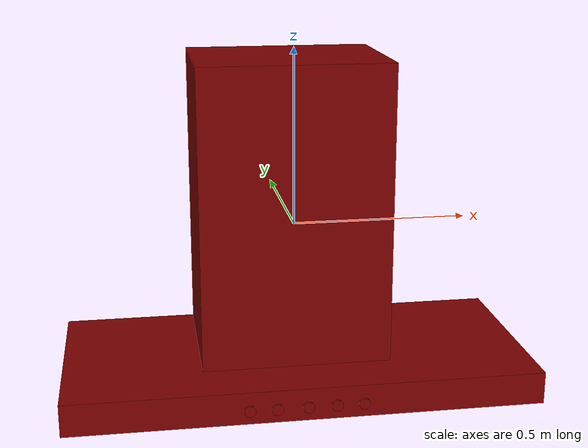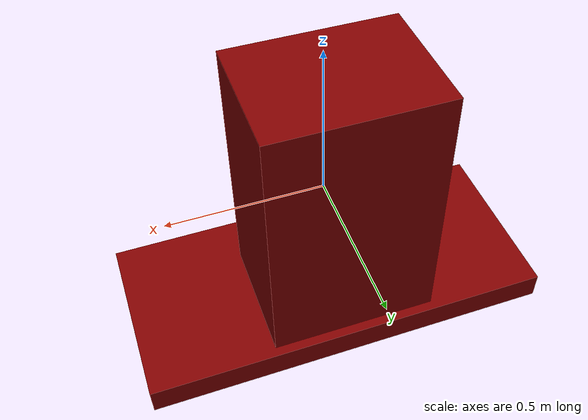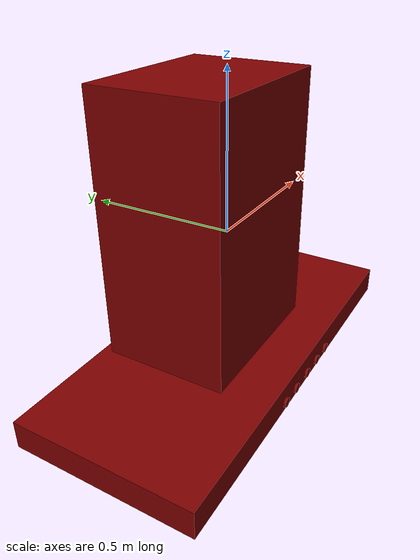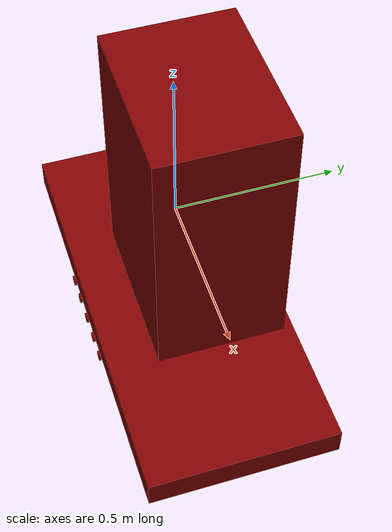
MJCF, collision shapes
<?xml version='1.0' encoding='UTF-8'?>
<mujoco model="model">
  <compiler angle="radian"/>
  <asset>
    <mesh file="visuals/Body001.obj" name="Body001_vis"/>
    <mesh file="visuals/Button001.obj" name="Button001_vis"/>
    <mesh file="visuals/Button002.obj" name="Button002_vis"/>
    <mesh file="visuals/Button003.obj" name="Button003_vis"/>
    <mesh file="visuals/Button004.obj" name="Button004_vis"/>
    <mesh file="visuals/Button005.obj" name="Button005_vis"/>
    <texture file="visuals/T_BC001.png" name="Body001_material" type="2d"/>
    <material name="Body001_material" rgba="1 1 1 1.0" texture="Body001_material" shininess="3" specular="3"/>
    <texture file="visuals/T_BC001.png" name="Button001_material" type="2d"/>
    <material name="Button001_material" rgba="1 1 1 1.0" texture="Button001_material" shininess="4" specular="4"/>
    <texture file="visuals/T_BC001.png" name="Button002_material" type="2d"/>
    <material name="Button002_material" rgba="1 1 1 1.0" texture="Button002_material" shininess="4" specular="4"/>
    <texture file="visuals/T_BC001.png" name="Button003_material" type="2d"/>
    <material name="Button003_material" rgba="1 1 1 1.0" texture="Button003_material" shininess="4" specular="4"/>
    <texture file="visuals/T_BC001.png" name="Button004_material" type="2d"/>
    <material name="Button004_material" rgba="1 1 1 1.0" texture="Button004_material" shininess="4" specular="4"/>
    <texture file="visuals/T_BC001.png" name="Button005_material" type="2d"/>
    <material name="Button005_material" rgba="1 1 1 1.0" texture="Button005_material" shininess="4" specular="4"/>
  </asset>
  <default>
    <default class="visual">
      <geom conaffinity="0" contype="0" group="1" type="mesh"/>
    </default>
    <default class="collision">
      <geom group="0" rgba="0.5 0 0 0.5"/>
    </default>
    <default class="spawn">
      <geom group="0" rgba="1 1 1 0.5" contype="0" conaffinity="0"/>
      <site group="0" rgba="1 1 1 0.5"/>
    </default>
    <default class="region">
      <geom group="1" conaffinity="0" contype="0" rgba="0 1 0 0"/>
    </default>
  </default>
  <worldbody>
    <body>
      <body name="object">
        <geom mesh="Body001_vis" type="mesh" solimp="0.998 0.998 0.001" solref="0.001 1" density="100" friction="0.95 0.3 0.1" class="visual" material="Body001_material"/>
        <geom class="collision" type="box" pos="-0.00016608834266662598 0.005338802933692932 -0.42563846707344055" size="0.665809690952301 0.2962397634983063 0.04605512320995331" quat="1.0 0.0 0.0 0.0"/>
        <geom class="collision" type="box" pos="-0.009912218898534775 0.06651869416236877 0.04355262219905853" size="0.2685760259628296 0.20476751029491425 0.42674219608306885" quat="1.0 0.0 0.0 0.0"/>
        <body name="Button001">
          <joint axis="0.0 1.0 0.0" pos="-0.16441524028778076 -0.295132577419281 -0.42969805002212524" limited="true" name="Button001_joint" range="0.0 0.005" type="slide" damping="1" frictionloss="1" armature=".01" stiffness="0.05"/>
          <geom mesh="Button001_vis" type="mesh" solimp="0.998 0.998 0.001" solref="0.001 1" density="100" friction="0.95 0.3 0.1" class="visual" material="Button001_material"/>
          <geom class="collision" type="cylinder" pos="-0.16427341103553772 -0.30011922121047974 -0.4299684166908264" size="0.015677018091082573 0.0034145661629736423" quat="0.7071067094802856 0.70710688829422 0.0 0.0"/>
        </body>
        <body name="Button002">
          <joint axis="0.0 1.0 0.0" pos="-0.08892402052879333 -0.295132577419281 -0.42969805002212524" limited="true" name="Button002_joint" range="0.0 0.005" type="slide" damping="1" frictionloss="1" armature=".01" stiffness="0.05"/>
          <geom mesh="Button002_vis" type="mesh" solimp="0.998 0.998 0.001" solref="0.001 1" density="100" friction="0.95 0.3 0.1" class="visual" material="Button002_material"/>
          <geom class="collision" type="cylinder" pos="-0.0888984203338623 -0.30011922121047974 -0.4299684166908264" size="0.015677018091082573 0.0034145661629736423" quat="0.7071067094802856 0.70710688829422 0.0 0.0"/>
        </body>
        <body name="Button003">
          <joint axis="0.0 1.0 0.0" pos="-0.0057508982717990875 -0.295132577419281 -0.42969805002212524" limited="true" name="Button003_joint" range="0.0 0.005" type="slide" damping="1" frictionloss="1" armature=".01" stiffness="0.05"/>
          <geom mesh="Button003_vis" type="mesh" solimp="0.998 0.998 0.001" solref="0.001 1" density="100" friction="0.95 0.3 0.1" class="visual" material="Button003_material"/>
          <geom class="collision" type="cylinder" pos="-0.004841499030590057 -0.30011922121047974 -0.4299684166908264" size="0.015677018091082573 0.0034145661629736423" quat="0.7071067094802856 0.70710688829422 0.0 0.0"/>
        </body>
        <body name="Button004">
          <joint axis="0.0 1.0 0.0" pos="0.07306495308876038 -0.295132577419281 -0.42969805002212524" limited="true" name="Button004_joint" range="0.0 0.005" type="slide" damping="1" frictionloss="1" armature=".01" stiffness="0.05"/>
          <geom mesh="Button004_vis" type="mesh" solimp="0.998 0.998 0.001" solref="0.001 1" density="100" friction="0.95 0.3 0.1" class="visual" material="Button004_material"/>
          <geom class="collision" type="cylinder" pos="0.07428250461816788 -0.30011922121047974 -0.4299684166908264" size="0.015677018091082573 0.0034145661629736423" quat="0.7071067094802856 0.70710688829422 0.0 0.0"/>
        </body>
        <body name="Button005">
          <joint axis="0.0 1.0 0.0" pos="0.14956903457641602 -0.295132577419281 -0.42969805002212524" limited="true" name="Button005_joint" range="0.0 0.005" type="slide" damping="1" frictionloss="1" armature=".01" stiffness="0.05"/>
          <geom mesh="Button005_vis" type="mesh" solimp="0.998 0.998 0.001" solref="0.001 1" density="100" friction="0.95 0.3 0.1" class="visual" material="Button005_material"/>
          <geom class="collision" type="cylinder" pos="0.14946016669273376 -0.30011922121047974 -0.4299684166908264" size="0.015677018091082573 0.0034145661629736423" quat="0.7071067094802856 0.70710688829422 0.0 0.0"/>
        </body>
        <geom class="region" name="reg_main" type="box" pos="0.0 0.0 0.0" size="0.6654198169708252 0.29974353313446045 0.4720735549926758"/>
      </body>
    </body>
  </worldbody>
  <actuator>
    <motor name="Button001_joint_actuator" joint="Button001_joint" gear="0.5"/>
    <motor name="Button002_joint_actuator" joint="Button002_joint" gear="0.5"/>
    <motor name="Button003_joint_actuator" joint="Button003_joint" gear="0.5"/>
    <motor name="Button004_joint_actuator" joint="Button004_joint" gear="0.5"/>
    <motor name="Button005_joint_actuator" joint="Button005_joint" gear="0.5"/>
  </actuator>
</mujoco>
